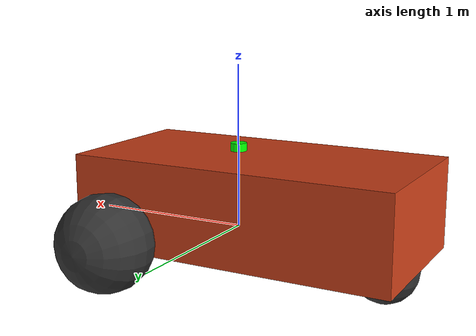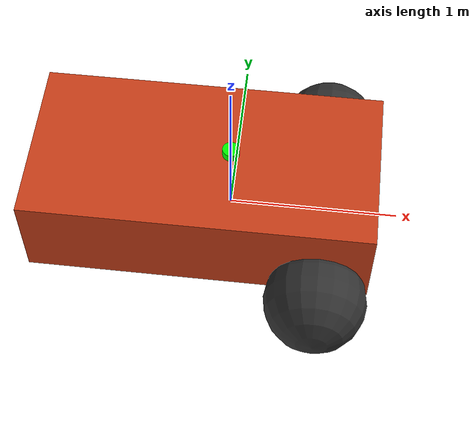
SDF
<?xml version="1.0" ?>
<sdf version="1.8">
    <model name='mars_rover'>
      <link name='chassis'>
        <pose>-0.151427 -0 0.175 0 -0 0</pose>
        <inertial>
          <mass>1.14395</mass>
          <inertia>
            <ixx>0.126164</ixx>
            <ixy>0</ixy>
            <ixz>0</ixz>
            <iyy>0.416519</iyy>
            <iyz>0</iyz>
            <izz>0.481014</izz>
          </inertia>
        </inertial>
        <visual name='visual_chassis'>
          <geometry>
            <box>
              <size>2.01142 1 0.568726</size>
            </box>
          </geometry>
          <material>
           <ambient>0.8 0.25 0.1 1</ambient>
            <diffuse>0.8 0.25 0.1 1</diffuse>
            <specular>0.0 0.0 1.0 1</specular>
          </material>
        </visual>
        <collision name='collision_chassis'>
          <geometry>
            <box>
              <size>2.01142 1 0.568726</size>
            </box>
          </geometry>
        </collision>
      </link>

      <link name='left_wheel'>
        <pose>0.554283 0.625029 -0.025 -1.5707 0 0</pose>
        <inertial>
          <mass>2</mass>
          <inertia>
            <ixx>0.145833</ixx>
            <ixy>0</ixy>
            <ixz>0</ixz>
            <iyy>0.145833</iyy>
            <iyz>0</iyz>
            <izz>0.125</izz>
          </inertia>
        </inertial>
        <visual name='visual_left_wheel'>
          <geometry>
            <sphere>
              <radius>0.3</radius>
            </sphere>
          </geometry>
          <material>
            <ambient>0.2 0.2 0.2 1</ambient>
            <diffuse>0.2 0.2 0.2 1</diffuse>
            <specular>0.2 0.2 0.2 1</specular>
          </material>
        </visual>
        <collision name='collision_left_wheel'>
          <geometry>
            <sphere>
              <radius>0.3</radius>
            </sphere>
          </geometry>
        </collision>
      </link>

      <link name='right_wheel'>
        <pose>0.554282 -0.625029 -0.025 -1.5707 0 0</pose>
        <inertial>
          <mass>2</mass>
          <inertia>
            <ixx>0.145833</ixx>
            <ixy>0</ixy>
            <ixz>0</ixz>
            <iyy>0.145833</iyy>
            <iyz>0</iyz>
            <izz>0.125</izz>
          </inertia>
        </inertial>
        <visual name='visual_right_wheel'>
          <geometry>
            <sphere>
              <radius>0.3</radius>
            </sphere>
          </geometry>
          <material>
            <ambient>0.2 0.2 0.2 1</ambient>
            <diffuse>0.2 0.2 0.2 1</diffuse>
            <specular>0.2 0.2 0.2 1</specular>
          </material>
        </visual>
        <collision name='collision_right_wheel'>
          <geometry>
            <sphere>
              <radius>0.3</radius>
            </sphere>
          </geometry>
        </collision>
      </link>

      <link name='caster'>
        <pose>-0.957138 -0 -0.125 0 -0 0</pose>
        <inertial>
          <mass>1</mass>
          <inertia>
            <ixx>0.1</ixx>
            <ixy>0</ixy>
            <ixz>0</ixz>
            <iyy>0.1</iyy>
            <iyz>0</iyz>
            <izz>0.1</izz>
          </inertia>
        </inertial>
        <visual name='visual_caster'>
          <geometry>
            <sphere>
              <radius>0.2</radius>
            </sphere>
          </geometry>
          <material>
            <ambient>0.2 0.2 0.2 1</ambient>
            <diffuse>0.2 0.2 0.2 1</diffuse>
            <specular>0.2 0.2 0.2 1</specular>
          </material>
        </visual>
        <collision name='collision_caster'>
          <geometry>
            <sphere>
              <radius>0.2</radius>
            </sphere>
          </geometry>
        </collision>
      </link>

      <joint name='left_wheel_joint' type='revolute'>
        <parent>chassis</parent>
        <child>left_wheel</child>
        <axis>
          <xyz>0 0 1</xyz>
          <limit>
            <lower>-1.79769e+308</lower>
            <upper>1.79769e+308</upper>
          </limit>
        </axis>
      </joint>

      <joint name='right_wheel_joint' type='revolute'>
        <parent>chassis</parent>
        <child>right_wheel</child>
        <axis>
          <xyz>0 0 1</xyz>
          <limit>
            <lower>-1.79769e+308</lower>
            <upper>1.79769e+308</upper>
          </limit>
        </axis>
      </joint>

      <joint name='caster_wheel' type='ball'>
        <parent>chassis</parent>
        <child>caster</child>
      </joint>
      <link name="lidar_link">
  <pose>0 0 0.5 0 0 0</pose>

  <visual name="lidar_visual">
    <geometry>
      <cylinder>
        <radius>0.05</radius>
        <length>0.05</length>
      </cylinder>
    </geometry>
    <material>
      <ambient>0 1 0 1</ambient>
      <diffuse>0 1 0 1</diffuse>
    </material>
  </visual>

  <sensor name="lidar_sensor" type="gpu_lidar">
    <topic>/lidar</topic>

    <update_rate>10</update_rate>

    <lidar>
    <scan>
    <horizontal>
      <samples>360</samples>
      <resolution>1</resolution>
      <min_angle>-3.14159</min_angle>
      <max_angle>3.14159</max_angle>
    </horizontal>
  </scan>

  <range>
    <min>0.10</min>
    <max>10.0</max>
    <resolution>0.01</resolution>
  </range>
</lidar>

    <always_on>true</always_on>
    <visualize>true</visualize>
  </sensor>
</link>

<joint name="lidar_joint" type="fixed">
  <parent>chassis</parent>
  <child>lidar_link</child>
</joint>

      <plugin
  filename="ignition-gazebo-diff-drive-system"
  name="ignition::gazebo::systems::DiffDrive">

  <left_joint>left_wheel_joint</left_joint>
  <right_joint>right_wheel_joint</right_joint>

  <topic>/model/mars_rover/cmd_vel</topic>

  <wheel_separation>1.25</wheel_separation>
  <wheel_radius>0.3</wheel_radius>

  <odom_publish_frequency>30</odom_publish_frequency>

  <max_linear_acceleration>2</max_linear_acceleration>
  <min_linear_acceleration>-2</min_linear_acceleration>

  <max_angular_acceleration>2</max_angular_acceleration>
  <min_angular_acceleration>-2</min_angular_acceleration>

  <max_linear_velocity>1.5</max_linear_velocity>
  <min_linear_velocity>-1.5</min_linear_velocity>

  <max_angular_velocity>1.5</max_angular_velocity>
  <min_angular_velocity>-1.5</min_angular_velocity>

</plugin>
    </model>
</sdf>
